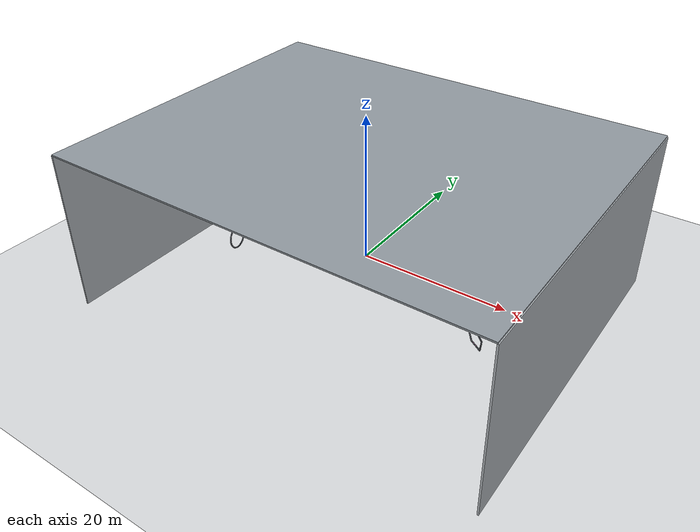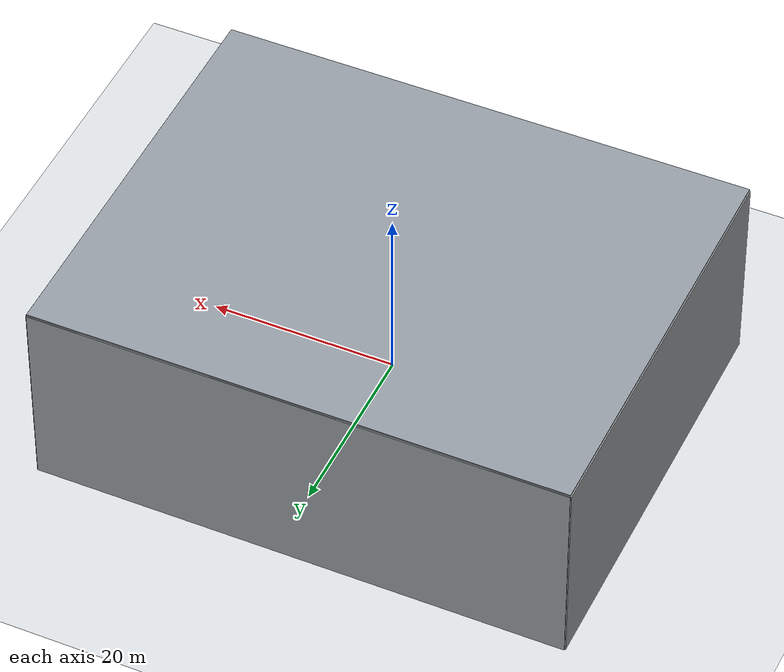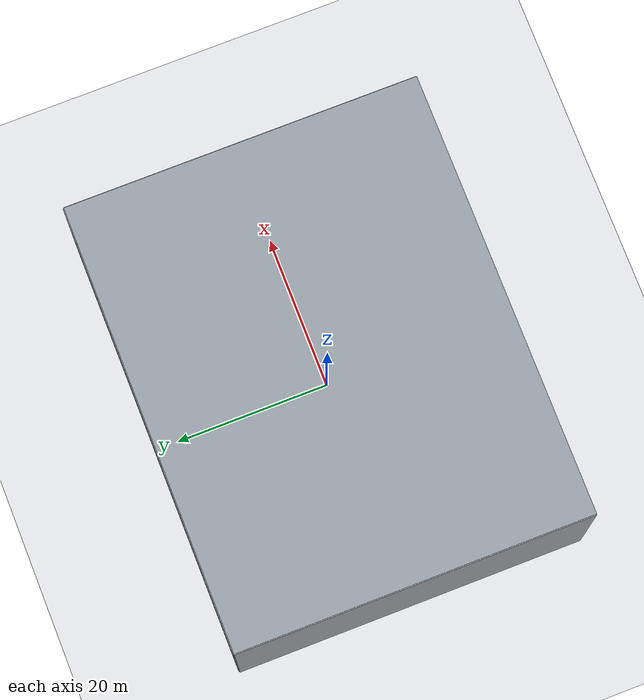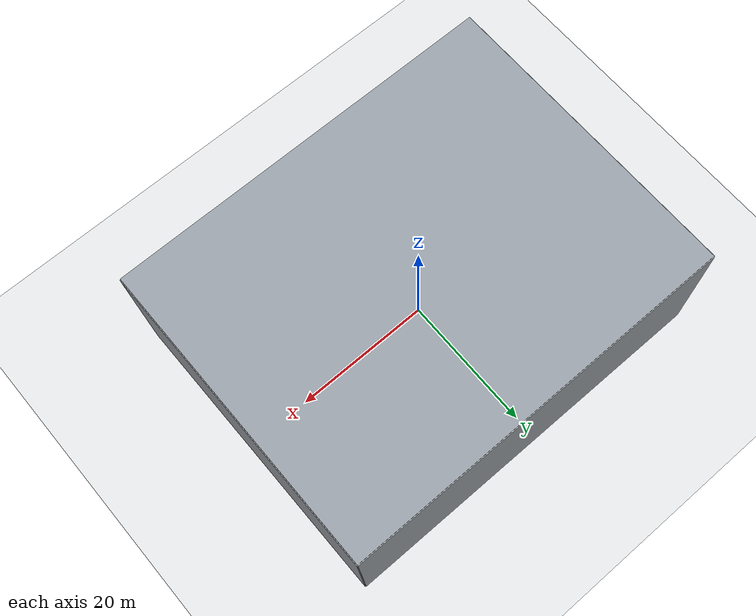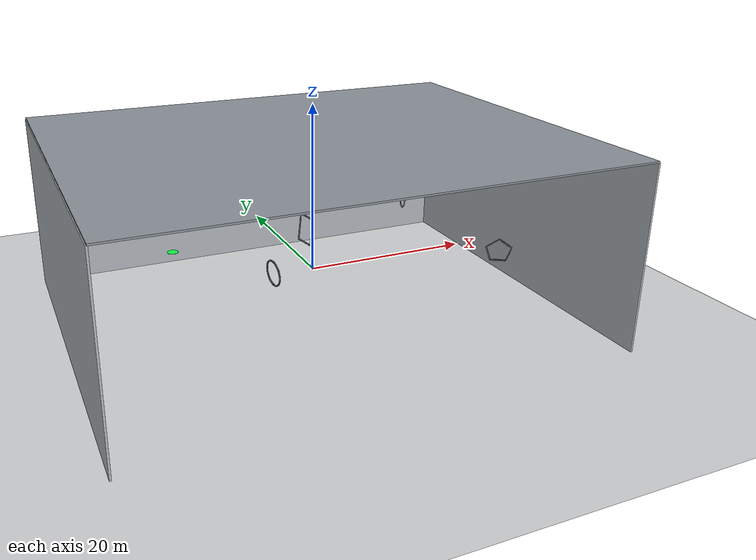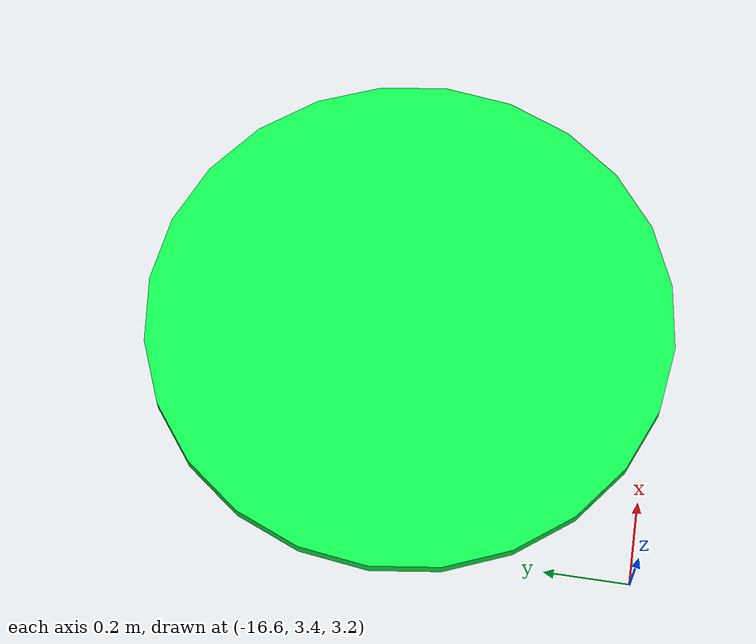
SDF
<sdf version="1.9">
 <world name="convex_seven_dynamic_px4_replay">
  <physics name="course_physics" type="dart">
   <max_step_size>0.004</max_step_size>
   <real_time_factor>1</real_time_factor>
  </physics>
  <plugin filename="gz-sim-user-commands-system" name="gz::sim::systems::UserCommands"/>
  <plugin filename="gz-sim-scene-broadcaster-system" name="gz::sim::systems::SceneBroadcaster"/>
  <plugin filename="gz-sim-contact-system" name="gz::sim::systems::Contact"/>
  <gravity>0 0 -9.8</gravity>
  <magnetic_field>6e-06 2.3e-05 -4.2e-05</magnetic_field>
  <atmosphere type="adiabatic"/>
  <spherical_coordinates>
   <surface_model>EARTH_WGS84</surface_model>
   <world_frame_orientation>ENU</world_frame_orientation>
   <latitude_deg>47.397971057728974</latitude_deg>
   <longitude_deg>8.546163739800146</longitude_deg>
   <elevation>0</elevation>
   <heading_deg>0</heading_deg>
  </spherical_coordinates>
  <plugin filename="libTrajectoryReplay.so" name="convex_dynamic_course::TrajectoryReplay">
   <target_model>x500_0</target_model>
   <motion_start_time>30</motion_start_time>
   <reference_environment_variable>REPLAY_REFERENCE</reference_environment_variable>
   <release_udp_port>18680</release_udp_port>
  </plugin>
  <scene>
   <ambient>0.65 0.67 0.70 1</ambient>
   <background>0.74 0.77 0.81 1</background>
   <shadows>true</shadows>
   <grid>false</grid>
  </scene>
  <light type="directional" name="sun">
   <pose>0 0 35 0 0 0</pose>
   <diffuse>0.95 0.95 0.92 1</diffuse>
   <direction>-0.35 0.25 -0.9</direction>
  </light>
  <model name="ground">
   <static>true</static>
   <pose>0 0 -6.0 0 0 0</pose>
   <link name="ground_link">
    <collision name="ground_collision">
     <geometry><plane><normal>0 0 1</normal><size>80 70</size></plane></geometry>
    </collision>
    <visual name="ground_visual">
     <geometry><plane><normal>0 0 1</normal><size>80 70</size></plane></geometry>
     <material>
      <ambient>.72 .74 .77 1</ambient>
      <diffuse>.84 .85 .86 1</diffuse>
      <pbr>
       <metal>
        <albedo_map>materials/textures/indoor_lab_floor.png</albedo_map>
        <roughness>.92</roughness>
        <metalness>.01</metalness>
       </metal>
      </pbr>
     </material>
    </visual>
   </link>
  </model>
  <model name="start_finish_marker">
   <static>true</static>
   <pose>-16 4 3.2 0 0 0</pose>
   <link name="marker">
    <visual name="ring">
     <geometry><cylinder><radius>.65</radius><length>.035</length></cylinder></geometry>
     <material><diffuse>.05 1 .30 1</diffuse><emissive>.03 .65 .18 1</emissive></material>
    </visual>
   </link>
  </model>
  <model name="back_wall">
   <static>true</static>
   <pose>0 23 5 0 0 0</pose>
   <link name="link">
    <visual name="visual">
     <geometry><box><size>58 0.22 22</size></box></geometry>
     <material><ambient>.70 .72 .74 1</ambient><diffuse>.70 .72 .74 1</diffuse></material>
    </visual>
   </link>
  </model>
  <model name="left_wall">
   <static>true</static>
   <pose>-29 0 5 0 0 0</pose>
   <link name="link">
    <visual name="visual">
     <geometry><box><size>0.22 46 22</size></box></geometry>
     <material><ambient>.70 .72 .74 1</ambient><diffuse>.70 .72 .74 1</diffuse></material>
    </visual>
   </link>
  </model>
  <model name="right_wall">
   <static>true</static>
   <pose>29 0 5 0 0 0</pose>
   <link name="link">
    <visual name="visual">
     <geometry><box><size>0.22 46 22</size></box></geometry>
     <material><ambient>.70 .72 .74 1</ambient><diffuse>.70 .72 .74 1</diffuse></material>
    </visual>
   </link>
  </model>
  <model name="lab_ceiling">
   <static>true</static>
   <pose>0 0 16.1 0 0 0</pose>
   <link name="link">
    <visual name="visual">
     <geometry><box><size>58 46 0.2</size></box></geometry>
     <material><ambient>.56 .59 .62 1</ambient><diffuse>.56 .59 .62 1</diffuse></material>
    </visual>
   </link>
  </model>
  <model name="ceiling_panel_0_0">
   <static>true</static>
   <pose>-20 -12 15.96 0 0 0</pose>
   <link name="link">
    <visual name="visual">
     <geometry><box><size>6 1 0.025</size></box></geometry>
     <material><ambient>.98 .98 .96 1</ambient><diffuse>.98 .98 .96 1</diffuse></material>
    </visual>
   </link>
  </model>
  <model name="ceiling_panel_0_1">
   <static>true</static>
   <pose>-7 -12 15.96 0 0 0</pose>
   <link name="link">
    <visual name="visual">
     <geometry><box><size>6 1 0.025</size></box></geometry>
     <material><ambient>.98 .98 .96 1</ambient><diffuse>.98 .98 .96 1</diffuse></material>
    </visual>
   </link>
  </model>
  <model name="ceiling_panel_0_2">
   <static>true</static>
   <pose>7 -12 15.96 0 0 0</pose>
   <link name="link">
    <visual name="visual">
     <geometry><box><size>6 1 0.025</size></box></geometry>
     <material><ambient>.98 .98 .96 1</ambient><diffuse>.98 .98 .96 1</diffuse></material>
    </visual>
   </link>
  </model>
  <model name="ceiling_panel_0_3">
   <static>true</static>
   <pose>20 -12 15.96 0 0 0</pose>
   <link name="link">
    <visual name="visual">
     <geometry><box><size>6 1 0.025</size></box></geometry>
     <material><ambient>.98 .98 .96 1</ambient><diffuse>.98 .98 .96 1</diffuse></material>
    </visual>
   </link>
  </model>
  <model name="ceiling_panel_1_0">
   <static>true</static>
   <pose>-20 0 15.96 0 0 0</pose>
   <link name="link">
    <visual name="visual">
     <geometry><box><size>6 1 0.025</size></box></geometry>
     <material><ambient>.98 .98 .96 1</ambient><diffuse>.98 .98 .96 1</diffuse></material>
    </visual>
   </link>
  </model>
  <model name="ceiling_panel_1_1">
   <static>true</static>
   <pose>-7 0 15.96 0 0 0</pose>
   <link name="link">
    <visual name="visual">
     <geometry><box><size>6 1 0.025</size></box></geometry>
     <material><ambient>.98 .98 .96 1</ambient><diffuse>.98 .98 .96 1</diffuse></material>
    </visual>
   </link>
  </model>
  <model name="ceiling_panel_1_2">
   <static>true</static>
   <pose>7 0 15.96 0 0 0</pose>
   <link name="link">
    <visual name="visual">
     <geometry><box><size>6 1 0.025</size></box></geometry>
     <material><ambient>.98 .98 .96 1</ambient><diffuse>.98 .98 .96 1</diffuse></material>
    </visual>
   </link>
  </model>
  <model name="ceiling_panel_1_3">
   <static>true</static>
   <pose>20 0 15.96 0 0 0</pose>
   <link name="link">
    <visual name="visual">
     <geometry><box><size>6 1 0.025</size></box></geometry>
     <material><ambient>.98 .98 .96 1</ambient><diffuse>.98 .98 .96 1</diffuse></material>
    </visual>
   </link>
  </model>
  <model name="ceiling_panel_2_0">
   <static>true</static>
   <pose>-20 12 15.96 0 0 0</pose>
   <link name="link">
    <visual name="visual">
     <geometry><box><size>6 1 0.025</size></box></geometry>
     <material><ambient>.98 .98 .96 1</ambient><diffuse>.98 .98 .96 1</diffuse></material>
    </visual>
   </link>
  </model>
  <model name="ceiling_panel_2_1">
   <static>true</static>
   <pose>-7 12 15.96 0 0 0</pose>
   <link name="link">
    <visual name="visual">
     <geometry><box><size>6 1 0.025</size></box></geometry>
     <material><ambient>.98 .98 .96 1</ambient><diffuse>.98 .98 .96 1</diffuse></material>
    </visual>
   </link>
  </model>
  <model name="ceiling_panel_2_2">
   <static>true</static>
   <pose>7 12 15.96 0 0 0</pose>
   <link name="link">
    <visual name="visual">
     <geometry><box><size>6 1 0.025</size></box></geometry>
     <material><ambient>.98 .98 .96 1</ambient><diffuse>.98 .98 .96 1</diffuse></material>
    </visual>
   </link>
  </model>
  <model name="ceiling_panel_2_3">
   <static>true</static>
   <pose>20 12 15.96 0 0 0</pose>
   <link name="link">
    <visual name="visual">
     <geometry><box><size>6 1 0.025</size></box></geometry>
     <material><ambient>.98 .98 .96 1</ambient><diffuse>.98 .98 .96 1</diffuse></material>
    </visual>
   </link>
  </model>
  <model name="gate_01_W1_rectangle">
   <static>true</static>
   <pose>-2.38423952046 -3.41816750175 6.5799573603 0.0173371697255 -1.46191480754 0.15870233978</pose>
   <link name="frame">
    <collision name="frame_collision">
     <geometry><mesh><uri>meshes/gate_01_rectangle_sleeve.stl</uri></mesh></geometry>
     <surface>
      <contact><collide_bitmask>0xffff</collide_bitmask></contact>
      <friction><ode><mu>0.8</mu><mu2>0.8</mu2></ode></friction>
     </surface>
    </collision>
    <visual name="foam_sleeve">
     <geometry><mesh><uri>meshes/gate_01_rectangle_sleeve.stl</uri></mesh></geometry>
     <material>
      <ambient>.025 .030 .040 1</ambient>
      <diffuse>.055 .065 .085 1</diffuse>
      <specular>.14 .14 .16 1</specular>
     </material>
    </visual>
    <visual name="led_inner_edge">
     <geometry><mesh><uri>meshes/gate_01_rectangle_core.stl</uri></mesh></geometry>
     <material>
      <ambient>0.1 0.58 1 1</ambient>
      <diffuse>0.1 0.58 1 1</diffuse>
      <emissive>0.1 0.58 1 1</emissive>
      <specular>.75 .75 .75 1</specular>
     </material>
    </visual>
    <sensor name="frame_contact" type="contact">
     <always_on>true</always_on>
     <update_rate>250</update_rate>
     <topic>/convex_seven/gate_01/contacts</topic>
     <contact><collision>frame_collision</collision></contact>
    </sensor>
   </link>
   <plugin filename="libPeriodicGateMotion.so" name="convex_dynamic_course::PeriodicGateMotion">
    <center0>-2.42 -3.52 6.48</center0>
    <base_rpy>0 -1.57079632679 0</base_rpy>
    <translation_amplitude>0.18 0.13 0.1</translation_amplitude>
    <rotation_amplitude>0.0872664625997 0.12217304764 0.174532925199</rotation_amplitude>
    <translation_period>10</translation_period>
    <rotation_period>8.5</rotation_period>
    <phase>0.2</phase>
    <motion_start_time>30</motion_start_time>
   </plugin>
  </model>
  <model name="gate_02_W2_circle">
   <static>true</static>
   <pose>20.1609500537 14.5399666833 1.88608273091 -0.0689840918014 -1.54500732373 -0.202661493132</pose>
   <link name="frame">
    <collision name="frame_collision">
     <geometry><mesh><uri>meshes/gate_02_circle_sleeve.stl</uri></mesh></geometry>
     <surface>
      <contact><collide_bitmask>0xffff</collide_bitmask></contact>
      <friction><ode><mu>0.8</mu><mu2>0.8</mu2></ode></friction>
     </surface>
    </collision>
    <visual name="foam_sleeve">
     <geometry><mesh><uri>meshes/gate_02_circle_sleeve.stl</uri></mesh></geometry>
     <material>
      <ambient>.025 .030 .040 1</ambient>
      <diffuse>.055 .065 .085 1</diffuse>
      <specular>.14 .14 .16 1</specular>
     </material>
    </visual>
    <visual name="led_inner_edge">
     <geometry><mesh><uri>meshes/gate_02_circle_core.stl</uri></mesh></geometry>
     <material>
      <ambient>1 0.3 0.16 1</ambient>
      <diffuse>1 0.3 0.16 1</diffuse>
      <emissive>1 0.3 0.16 1</emissive>
      <specular>.75 .75 .75 1</specular>
     </material>
    </visual>
    <sensor name="frame_contact" type="contact">
     <always_on>true</always_on>
     <update_rate>250</update_rate>
     <topic>/convex_seven/gate_02/contacts</topic>
     <contact><collision>frame_collision</collision></contact>
    </sensor>
   </link>
   <plugin filename="libPeriodicGateMotion.so" name="convex_dynamic_course::PeriodicGateMotion">
    <center0>20.24 14.52 1.8</center0>
    <base_rpy>0 -1.57079632679 -0.349065850399</base_rpy>
    <translation_amplitude>0.14 0.2 0.12</translation_amplitude>
    <rotation_amplitude>0.12217304764 0.0872664625997 0.157079632679</rotation_amplitude>
    <translation_period>10.8</translation_period>
    <rotation_period>9.2</rotation_period>
    <phase>-0.6</phase>
    <motion_start_time>30</motion_start_time>
   </plugin>
  </model>
  <model name="gate_03_W3_pentagon">
   <static>true</static>
   <pose>20.3966653819 -8.68005116764 2.27185578183 0.0820298021548 -1.43482154622 -2.21671372512</pose>
   <link name="frame">
    <collision name="frame_collision">
     <geometry><mesh><uri>meshes/gate_03_pentagon_sleeve.stl</uri></mesh></geometry>
     <surface>
      <contact><collide_bitmask>0xffff</collide_bitmask></contact>
      <friction><ode><mu>0.8</mu><mu2>0.8</mu2></ode></friction>
     </surface>
    </collision>
    <visual name="foam_sleeve">
     <geometry><mesh><uri>meshes/gate_03_pentagon_sleeve.stl</uri></mesh></geometry>
     <material>
      <ambient>.025 .030 .040 1</ambient>
      <diffuse>.055 .065 .085 1</diffuse>
      <specular>.14 .14 .16 1</specular>
     </material>
    </visual>
    <visual name="led_inner_edge">
     <geometry><mesh><uri>meshes/gate_03_pentagon_core.stl</uri></mesh></geometry>
     <material>
      <ambient>0.92 0.18 0.62 1</ambient>
      <diffuse>0.92 0.18 0.62 1</diffuse>
      <emissive>0.92 0.18 0.62 1</emissive>
      <specular>.75 .75 .75 1</specular>
     </material>
    </visual>
    <sensor name="frame_contact" type="contact">
     <always_on>true</always_on>
     <update_rate>250</update_rate>
     <topic>/convex_seven/gate_03/contacts</topic>
     <contact><collision>frame_collision</collision></contact>
    </sensor>
   </link>
   <plugin filename="libPeriodicGateMotion.so" name="convex_dynamic_course::PeriodicGateMotion">
    <center0>20.24 -8.8 2.16</center0>
    <base_rpy>0 -1.57079632679 -2.26892802759</base_rpy>
    <translation_amplitude>0.2 0.12 0.15</translation_amplitude>
    <rotation_amplitude>0.10471975512 0.13962634016 0.12217304764</rotation_amplitude>
    <translation_period>11.6</translation_period>
    <rotation_period>9.9</rotation_period>
    <phase>0.9</phase>
    <motion_start_time>30</motion_start_time>
   </plugin>
  </model>
  <model name="gate_04_W4_circle">
   <static>true</static>
   <pose>-9.94728323307 -13.1299046984 6.39803280961 -0.0412624048993 -1.51166710525 3.31568837147</pose>
   <link name="frame">
    <collision name="frame_collision">
     <geometry><mesh><uri>meshes/gate_04_circle_sleeve.stl</uri></mesh></geometry>
     <surface>
      <contact><collide_bitmask>0xffff</collide_bitmask></contact>
      <friction><ode><mu>0.8</mu><mu2>0.8</mu2></ode></friction>
     </surface>
    </collision>
    <visual name="foam_sleeve">
     <geometry><mesh><uri>meshes/gate_04_circle_sleeve.stl</uri></mesh></geometry>
     <material>
      <ambient>.025 .030 .040 1</ambient>
      <diffuse>.055 .065 .085 1</diffuse>
      <specular>.14 .14 .16 1</specular>
     </material>
    </visual>
    <visual name="led_inner_edge">
     <geometry><mesh><uri>meshes/gate_04_circle_core.stl</uri></mesh></geometry>
     <material>
      <ambient>0.98 0.76 0.08 1</ambient>
      <diffuse>0.98 0.76 0.08 1</diffuse>
      <emissive>0.98 0.76 0.08 1</emissive>
      <specular>.75 .75 .75 1</specular>
     </material>
    </visual>
    <sensor name="frame_contact" type="contact">
     <always_on>true</always_on>
     <update_rate>250</update_rate>
     <topic>/convex_seven/gate_04/contacts</topic>
     <contact><collision>frame_collision</collision></contact>
    </sensor>
   </link>
   <plugin filename="libPeriodicGateMotion.so" name="convex_dynamic_course::PeriodicGateMotion">
    <center0>-9.9 -13.2 6.3</center0>
    <base_rpy>0 -1.57079632679 3.14159265359</base_rpy>
    <translation_amplitude>0.16 0.18 0.11</translation_amplitude>
    <rotation_amplitude>0.13962634016 0.10471975512 0.174532925199</rotation_amplitude>
    <translation_period>12.4</translation_period>
    <rotation_period>10.6</rotation_period>
    <phase>-0.3</phase>
    <motion_start_time>30</motion_start_time>
   </plugin>
  </model>
  <model name="gate_07_W7_rectangle">
   <static>true</static>
   <pose>2.09663265309 8.1872354487 5.63811349866 0.101193477677 -1.48356707435 2.60384458116</pose>
   <link name="frame">
    <collision name="frame_collision">
     <geometry><mesh><uri>meshes/gate_07_rectangle_sleeve.stl</uri></mesh></geometry>
     <surface>
      <contact><collide_bitmask>0xffff</collide_bitmask></contact>
      <friction><ode><mu>0.8</mu><mu2>0.8</mu2></ode></friction>
     </surface>
    </collision>
    <visual name="foam_sleeve">
     <geometry><mesh><uri>meshes/gate_07_rectangle_sleeve.stl</uri></mesh></geometry>
     <material>
      <ambient>.025 .030 .040 1</ambient>
      <diffuse>.055 .065 .085 1</diffuse>
      <specular>.14 .14 .16 1</specular>
     </material>
    </visual>
    <visual name="led_inner_edge">
     <geometry><mesh><uri>meshes/gate_07_rectangle_core.stl</uri></mesh></geometry>
     <material>
      <ambient>0.67 0.35 1 1</ambient>
      <diffuse>0.67 0.35 1 1</diffuse>
      <emissive>0.67 0.35 1 1</emissive>
      <specular>.75 .75 .75 1</specular>
     </material>
    </visual>
    <sensor name="frame_contact" type="contact">
     <always_on>true</always_on>
     <update_rate>250</update_rate>
     <topic>/convex_seven/gate_07/contacts</topic>
     <contact><collision>frame_collision</collision></contact>
    </sensor>
   </link>
   <plugin filename="libPeriodicGateMotion.so" name="convex_dynamic_course::PeriodicGateMotion">
    <center0>2 8 5.5</center0>
    <base_rpy>0 -1.57079632679 2.53072741539</base_rpy>
    <translation_amplitude>0.15 0.19 0.16</translation_amplitude>
    <rotation_amplitude>0.157079632679 0.0872664625997 0.12217304764</rotation_amplitude>
    <translation_period>14.8</translation_period>
    <rotation_period>12.7</rotation_period>
    <phase>0.7</phase>
    <motion_start_time>30</motion_start_time>
   </plugin>
  </model>
 </world>
</sdf>
